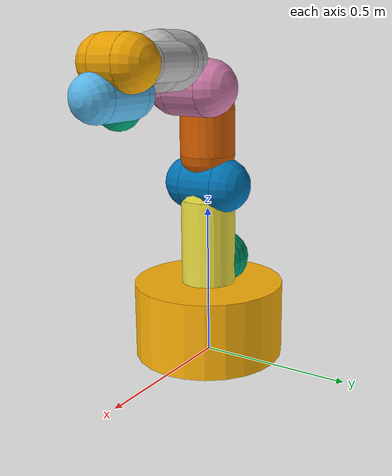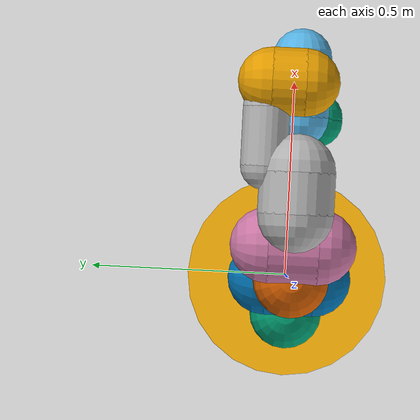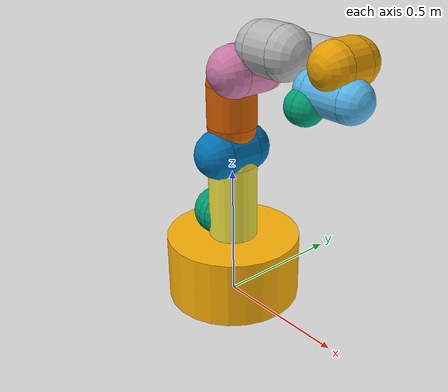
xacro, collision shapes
<?xml version="1.0" encoding="utf-8"?>
<robot xmlns:xacro="http://www.ros.org/wiki/xacro" name="panda">

  <!-- Include ros2_control definitions (must come before args) -->
  <xacro:include filename="$(find panda_description)/robots/ros2_control/panda_arm.ros2_control.xacro"/>

  <!-- Launch-time arguments ──────────────────────────────────────────────── -->
  <xacro:arg name="arm_id"                         default="panda"/>
  <xacro:arg name="hand"                           default="false"/>
  <xacro:arg name="robot_ip"                       default=""/>
  <xacro:arg name="use_fake_hardware"              default="false"/>
  <xacro:arg name="fake_sensor_commands"           default="false"/>
  <xacro:arg name="use_sim_time"                   default="false"/>
  <!-- path to your controllers YAML (if not overridden) -->
  <xacro:arg name="simulation_controllers_config_file"
             default="$(find panda_gazebo)/config/gazebo_panda_controllers.yaml"/>
  <!-- feed-forward gains -->
  <xacro:arg name="ff_vel"                          default="1.0"/>
  <xacro:arg name="ff_accel"                        default="0.2"/>

  <!-- World → base frame ─────────────────────────────────────────────────── -->
  <link name="world"/>
  <joint name="fixed_frame" type="fixed">
    <origin xyz="0 0 0.125" rpy="0 0 0"/>
    <parent link="world"/>
    <child  link="cylinder_base"/>
  </joint>

  <!-- Base pedestal ───────────────────────────────────────────────────────── -->
<link name="cylinder_base">
  <visual>
    <origin xyz="0 0 0" rpy="0 0 0"/>
    <geometry>
      <cylinder radius="0.25" length="0.25"/>
    </geometry>
    <material name="amber">
      <color rgba="0.996 0.702 0.031 1.0"/>
    </material>
  </visual>
  <collision>
    <origin xyz="0 0 0" rpy="0 0 0"/>
    <geometry>
      <cylinder radius="0.25" length="0.25"/>
    </geometry>
  </collision>
  <inertial>
    <mass value="10"/>
    <inertia
      ixx="0.3646" ixy="0" ixz="0"
      iyy="0.3646" iyz="0"
      izz="0.3125"/>
  </inertial>
</link>

  <!-- Panda arm kinematics & visuals ──────────────────────────────────────── -->
  <xacro:include filename="$(find panda_description)/robots/panda_arm.xacro"/>
  <xacro:panda_arm
      arm_id="$(arg arm_id)"
      connected_to="cylinder_base"
      xyz="0 0 0.125"
      safety_distance="0.03"
      use_sim_time="$(arg use_sim_time)"/>

  <!-- Optional hand (gripper) ────────────────────────────────────────────── -->

  <!-- Arm ros2_control + feed-forward instantiation ───────────────────────── -->
  <xacro:panda_arm_ros2_control
      ns="$(arg arm_id)"
      use_sim_time="$(arg use_sim_time)"
      load_gripper="$(arg hand)"
      simulation_controllers_config_file="$(arg simulation_controllers_config_file)"
      ff_vel="$(arg ff_vel)"
      ff_accel="$(arg ff_accel)"/>

  <!-- Gazebo joint-trajectory-controller plugin (if still needed) ─────────── -->
  <plugin filename="libgz-sim-joint-trajectory-controller-system.so"
          name="gz::sim::systems::JointTrajectoryController">
    <!-- list each of your 7 joints -->
    <joint_name>panda_joint1</joint_name>
    <joint_name>panda_joint2</joint_name>
    <joint_name>panda_joint3</joint_name>
    <joint_name>panda_joint4</joint_name>
    <joint_name>panda_joint5</joint_name>
    <joint_name>panda_joint6</joint_name>
    <joint_name>panda_joint7</joint_name>

    <!-- per-joint P gains (example values) -->
    <position_p_gain>100</position_p_gain>
    <position_p_gain>100</position_p_gain>
    <position_p_gain>100</position_p_gain>
    <position_p_gain>100</position_p_gain>
    <position_p_gain>100</position_p_gain>
    <position_p_gain>100</position_p_gain>
    <position_p_gain>100</position_p_gain>
  </plugin>

</robot>

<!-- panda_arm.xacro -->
<robot xmlns:xacro="http://www.ros.org/wiki/xacro" name="panda">
  <!-- safety_distance: Minimum safety distance in [m] by which the collision volumes are expanded and which is enforced during robot motions -->
  <!-- arm_id: Namespace of the panda arm. Serves to differentiate between arms in case of multiple instances. -->
  <xacro:macro name="panda_arm" params="arm_id:='panda' description_pkg:='panda_description' connected_to:='' xyz:='0 0 0' rpy:='0 0 0' safety_distance:=0">
    <xacro:unless value="${not connected_to}">
      <joint name="${arm_id}_joint_${connected_to}" type="fixed">
        <parent link="${connected_to}"/>
        <child link="${arm_id}_link0"/>
        <origin rpy="${rpy}" xyz="${xyz}"/>
      </joint>
    </xacro:unless>
    <link name="${arm_id}_link0">
      <visual>
        <geometry>
          <mesh filename="package://${description_pkg}/meshes/visual/link0.dae"/>
        </geometry>
      </visual>
      <collision>
        <origin xyz="-0.075 0 0.06" rpy="0 ${pi/2} 0"/>
        <geometry>
          <cylinder radius="${0.06+safety_distance}" length="0.03" />
        </geometry>
      </collision>
      <collision>
        <origin xyz="-0.06 0 0.06" rpy="0 0 0"/>
        <geometry>
          <sphere radius="${0.06+safety_distance}" />
        </geometry>
      </collision>
      <collision>
        <origin xyz="-0.09 0 0.06" rpy="0 0 0"/>
        <geometry>
          <sphere radius="${0.06+safety_distance}" />
        </geometry>
      </collision>
    </link>
    <link name="${arm_id}_link1">
      <visual>
        <geometry>
          <mesh filename="package://${description_pkg}/meshes/visual/link1.dae"/>
        </geometry>
      </visual>
      <collision>
        <origin xyz="0 0 -0.1915" rpy="0 0 0"/>
        <geometry>
          <cylinder radius="${0.06+safety_distance}" length="0.2830" />
        </geometry>
      </collision>
      <collision>
        <origin xyz="0 0 -0.333" rpy="0 0 0"/>
        <geometry>
          <sphere radius="${0.06+safety_distance}" />
        </geometry>
      </collision>
      <collision>
        <origin xyz="0 0 -0.05" rpy="0 0 0"/>
        <geometry>
          <sphere radius="${0.06+safety_distance}" />
        </geometry>
      </collision>
    </link>
    <joint name="${arm_id}_joint1" type="revolute">
      <safety_controller k_position="100.0" k_velocity="40.0" soft_lower_limit="-2.8973" soft_upper_limit="2.8973"/>
      <origin rpy="0 0 0" xyz="0 0 0.333"/>
      <parent link="${arm_id}_link0"/>
      <child link="${arm_id}_link1"/>
      <axis xyz="0 0 1"/>
      <limit effort="87" lower="-2.8973" upper="2.8973" velocity="2.1750"/>
    </joint>
    <link name="${arm_id}_link2">
      <visual>
        <geometry>
          <mesh filename="package://${description_pkg}/meshes/visual/link2.dae"/>
        </geometry>
      </visual>
      <collision>
        <origin xyz="0 0 0" rpy="0 0 0"/>
        <geometry>
          <cylinder radius="${0.06+safety_distance}" length="0.12" />
        </geometry>
      </collision>
      <collision>
        <origin xyz="0 0 -0.06" rpy="0 0 0"/>
        <geometry>
          <sphere radius="${0.06+safety_distance}" />
        </geometry>
      </collision>
      <collision>
        <origin xyz="0 0 0.06" rpy="0 0 0"/>
        <geometry>
          <sphere radius="${0.06+safety_distance}" />
        </geometry>
      </collision>
    </link>
    <joint name="${arm_id}_joint2" type="revolute">
      <safety_controller k_position="100.0" k_velocity="40.0" soft_lower_limit="-1.7628" soft_upper_limit="1.7628"/>
      <origin rpy="${-pi/2} 0 0" xyz="0 0 0"/>
      <parent link="${arm_id}_link1"/>
      <child link="${arm_id}_link2"/>
      <axis xyz="0 0 1"/>
      <limit effort="87" lower="-1.7628" upper="1.7628" velocity="2.1750"/>
    </joint>
    <link name="${arm_id}_link3">
      <visual>
        <geometry>
          <mesh filename="package://${description_pkg}/meshes/visual/link3.dae"/>
        </geometry>
      </visual>
      <collision>
        <origin xyz="0 0 -0.145" rpy="0 0 0"/>
        <geometry>
          <cylinder radius="${0.06+safety_distance}" length="0.15" />
        </geometry>
      </collision>
      <collision>
        <origin xyz="0 0 -0.22" rpy="0 0 0"/>
        <geometry>
          <sphere radius="${0.06+safety_distance}" />
        </geometry>
      </collision>
      <collision>
        <origin xyz="0 0 -0.07" rpy="0 0 0"/>
        <geometry>
          <sphere radius="${0.06+safety_distance}" />
        </geometry>
      </collision>
    </link>
    <joint name="${arm_id}_joint3" type="revolute">
      <safety_controller k_position="100.0" k_velocity="40.0" soft_lower_limit="-2.8973" soft_upper_limit="2.8973"/>
      <origin rpy="${pi/2} 0 0" xyz="0 -0.316 0"/>
      <parent link="${arm_id}_link2"/>
      <child link="${arm_id}_link3"/>
      <axis xyz="0 0 1"/>
      <limit effort="87" lower="-2.8973" upper="2.8973" velocity="2.1750"/>
    </joint>
    <link name="${arm_id}_link4">
      <visual>
        <geometry>
          <mesh filename="package://${description_pkg}/meshes/visual/link4.dae"/>
        </geometry>
      </visual>
      <collision>
        <origin xyz="0 0 0" rpy="0 0 0"/>
        <geometry>
          <cylinder radius="${0.06+safety_distance}" length="0.12" />
        </geometry>
      </collision>
      <collision>
        <origin xyz="0 0 0.06" rpy="0 0 0"/>
        <geometry>
          <sphere radius="${0.06+safety_distance}" />
        </geometry>
      </collision>
      <collision>
        <origin xyz="0 0 -0.06" rpy="0 0 0"/>
        <geometry>
          <sphere radius="${0.06+safety_distance}" />
        </geometry>
      </collision>
    </link>
    <joint name="${arm_id}_joint4" type="revolute">
      <safety_controller k_position="100.0" k_velocity="40.0" soft_lower_limit="-3.0718" soft_upper_limit="-0.0698"/>
      <origin rpy="${pi/2} 0 0" xyz="0.0825 0 0"/>
      <parent link="${arm_id}_link3"/>
      <child link="${arm_id}_link4"/>
      <axis xyz="0 0 1"/>
      <limit effort="87" lower="-3.0718" upper="-0.0698" velocity="2.1750"/>
    </joint>
    <link name="${arm_id}_link5">
      <visual>
        <geometry>
          <mesh filename="package://${description_pkg}/meshes/visual/link5.dae"/>
        </geometry>
      </visual>
      <collision>
        <origin xyz="0 0 -0.26" rpy="0 0 0"/>
        <geometry>
          <cylinder radius="${0.06+safety_distance}" length="0.1" />
        </geometry>
      </collision>
      <collision>
        <origin xyz="0 0 -0.31" rpy="0 0 0"/>
        <geometry>
          <sphere radius="${0.06+safety_distance}" />
        </geometry>
      </collision>
      <collision>
        <origin xyz="0 0 -0.21" rpy="0 0 0"/>
        <geometry>
          <sphere radius="${0.06+safety_distance}" />
        </geometry>
      </collision>
      <collision>
        <origin xyz="0 0.08 -0.13" rpy="0 0 0"/>
        <geometry>
          <cylinder radius="${0.025+safety_distance}" length="0.14" />
        </geometry>
      </collision>
      <collision>
        <origin xyz="0 0.08 -0.06" rpy="0 0 0"/>
        <geometry>
          <sphere radius="${0.025+safety_distance}" />
        </geometry>
      </collision>
      <collision>
        <origin xyz="0 0.08 -0.20" rpy="0 0 0"/>
        <geometry>
          <sphere radius="${0.025+safety_distance}" />
        </geometry>
      </collision>

    </link>
    <joint name="${arm_id}_joint5" type="revolute">
      <safety_controller k_position="100.0" k_velocity="40.0" soft_lower_limit="-2.8973" soft_upper_limit="2.8973"/>
      <origin rpy="${-pi/2} 0 0" xyz="-0.0825 0.384 0"/>
      <parent link="${arm_id}_link4"/>
      <child link="${arm_id}_link5"/>
      <axis xyz="0 0 1"/>
      <limit effort="12" lower="-2.8973" upper="2.8973" velocity="2.6100"/>
    </joint>
    <link name="${arm_id}_link6">
      <visual>
        <geometry>
          <mesh filename="package://${description_pkg}/meshes/visual/link6.dae"/>
        </geometry>
      </visual>
      <collision>
        <origin xyz="0 0 -0.03" rpy="0 0 0"/>
        <geometry>
          <cylinder radius="${0.05+safety_distance}" length="0.08" />
        </geometry>
      </collision>
      <collision>
        <origin xyz="0 0 0.01" rpy="0 0 0"/>
        <geometry>
          <sphere radius="${0.05+safety_distance}" />
        </geometry>
      </collision>
      <collision>
        <origin xyz="0 0 -0.07" rpy="0 0 0"/>
        <geometry>
          <sphere radius="${0.05+safety_distance}" />
        </geometry>
      </collision>
    </link>
    <joint name="${arm_id}_joint6" type="revolute">
      <safety_controller k_position="100.0" k_velocity="40.0" soft_lower_limit="-0.0175" soft_upper_limit="3.7525"/>
      <origin rpy="${pi/2} 0 0" xyz="0 0 0"/>
      <parent link="${arm_id}_link5"/>
      <child link="${arm_id}_link6"/>
      <axis xyz="0 0 1"/>
      <limit effort="12" lower="-0.0175" upper="3.7525" velocity="2.6100"/>
    </joint>
    <link name="${arm_id}_link7">
      <visual>
        <geometry>
          <mesh filename="package://${description_pkg}/meshes/visual/link7.dae"/>
        </geometry>
      </visual>
      <collision>
        <origin xyz="0 0 0.01" rpy="0 0 0"/>
        <geometry>
          <cylinder radius="${0.04+safety_distance}" length="0.14" />
        </geometry>
      </collision>
      <collision>
        <origin xyz="0 0 0.08" rpy="0 0 0"/>
        <geometry>
          <sphere radius="${0.04+safety_distance}"  />
        </geometry>
      </collision>
      <collision>
        <origin xyz="0 0 -0.06" rpy="0 0 0"/>
        <geometry>
          <sphere radius="${0.04+safety_distance}"  />
        </geometry>
      </collision>
    </link>
    <joint name="${arm_id}_joint7" type="revolute">
      <safety_controller k_position="100.0" k_velocity="40.0" soft_lower_limit="-2.8973" soft_upper_limit="2.8973"/>
      <origin rpy="${pi/2} 0 0" xyz="0.088 0 0"/>
      <parent link="${arm_id}_link6"/>
      <child link="${arm_id}_link7"/>
      <axis xyz="0 0 1"/>
      <limit effort="12" lower="-2.8973" upper="2.8973" velocity="2.6100"/>
    </joint>
    <link name="${arm_id}_link8">
      <collision>
        <origin xyz="0.0424 0.0424 -0.0250" rpy="${pi} ${pi/2} ${pi/2}"/>
        <geometry>
          <cylinder radius="${0.03+safety_distance}"  length="0.01" />
        </geometry>
      </collision>
      <collision>
        <origin xyz="0.0424 0.0424 -0.02" rpy="0 0 0"/>
        <geometry>
          <sphere radius="${0.03+safety_distance}"  />
        </geometry>
      </collision>
      <collision>
        <origin xyz="0.0424 0.0424 -0.03" rpy="0 0 0"/>
        <geometry>
          <sphere radius="${0.03+safety_distance}"  />
        </geometry>
      </collision>
    </link>
    <joint name="${arm_id}_joint8" type="fixed">
      <origin rpy="0 0 0" xyz="0 0 0.107"/>
      <parent link="${arm_id}_link7"/>
      <child link="${arm_id}_link8"/>
    </joint>
  </xacro:macro>
</robot>
